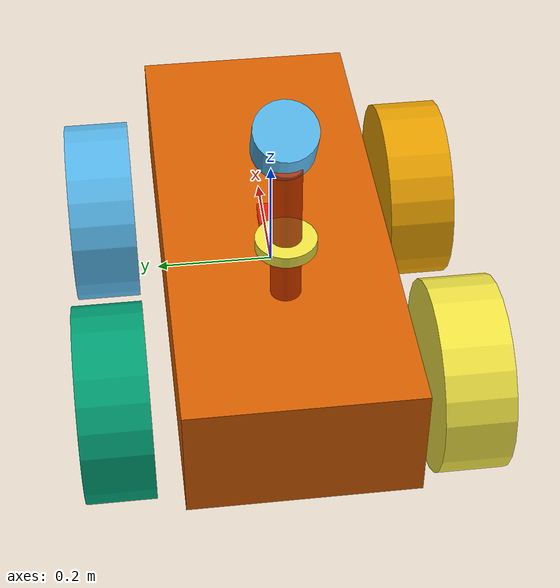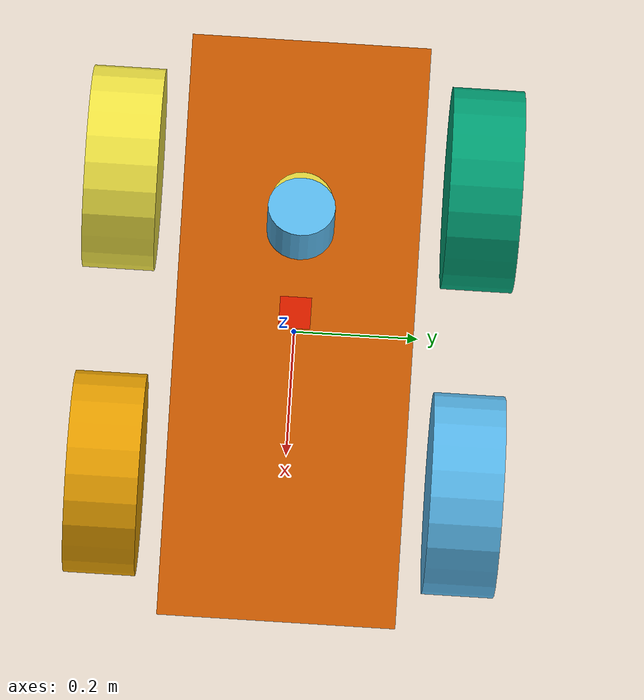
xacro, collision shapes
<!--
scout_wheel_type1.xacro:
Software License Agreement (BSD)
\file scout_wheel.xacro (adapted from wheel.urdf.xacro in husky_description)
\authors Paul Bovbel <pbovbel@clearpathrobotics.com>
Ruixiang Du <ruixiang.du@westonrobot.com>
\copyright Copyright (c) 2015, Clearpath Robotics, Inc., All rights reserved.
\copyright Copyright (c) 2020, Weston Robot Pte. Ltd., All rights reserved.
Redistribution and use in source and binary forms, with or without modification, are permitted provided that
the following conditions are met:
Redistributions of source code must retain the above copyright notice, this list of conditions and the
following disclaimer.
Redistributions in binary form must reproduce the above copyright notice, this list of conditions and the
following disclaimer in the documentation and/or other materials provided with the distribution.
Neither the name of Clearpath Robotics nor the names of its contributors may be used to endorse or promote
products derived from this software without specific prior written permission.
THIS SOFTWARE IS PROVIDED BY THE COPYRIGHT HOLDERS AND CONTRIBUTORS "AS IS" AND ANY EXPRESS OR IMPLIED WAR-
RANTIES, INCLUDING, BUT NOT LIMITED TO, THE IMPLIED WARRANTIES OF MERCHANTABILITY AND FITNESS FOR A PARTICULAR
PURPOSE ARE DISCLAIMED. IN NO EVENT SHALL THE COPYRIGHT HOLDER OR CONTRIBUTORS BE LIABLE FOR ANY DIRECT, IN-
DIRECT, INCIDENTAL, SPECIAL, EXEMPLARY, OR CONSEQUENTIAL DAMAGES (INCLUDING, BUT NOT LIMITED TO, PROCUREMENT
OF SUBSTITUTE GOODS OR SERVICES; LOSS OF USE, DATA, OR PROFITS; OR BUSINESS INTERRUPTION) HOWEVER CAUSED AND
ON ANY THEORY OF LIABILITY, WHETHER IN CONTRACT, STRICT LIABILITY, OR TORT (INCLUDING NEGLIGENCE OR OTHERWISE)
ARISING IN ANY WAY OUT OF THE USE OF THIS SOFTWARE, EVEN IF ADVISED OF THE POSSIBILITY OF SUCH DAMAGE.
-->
<?xml version="1.0"?>

<robot name="scout_v2"  xmlns:xacro="http://ros.org/wiki/xacro">

    <xacro:arg name="robot_namespace" default="/" />

    <!-- 属性封装 -->
    <xacro:property name="M_PI" value="3.14159"/>

    <xacro:property name="base_x_size" value="0.9250000" />
    <xacro:property name="base_y_size" value="0.380000" />
    <xacro:property name="base_z_size" value="0.210000" />

    <xacro:property name="wheelbase" value="0.498" />
    <xacro:property name="track" value="0.58306" />   <!-- track————车轮间距 -->
    <xacro:property name="wheel_vertical_offset" value="-0.0702" />

    <xacro:property name="wheel_length" value="1.1653e-01" />
    <xacro:property name="wheel_radius" value="1.6459e-01" />

    <xacro:arg name="organize_cloud" default="true"/>
    <xacro:property name="organize_cloud" value="$(arg organize_cloud)" />

    <material name="black">
        <color rgba="0.0 0.0 0.0 1.0" />
    </material>

    <!-- 底盘的轮子 -->
    <xacro:include filename="$(find scout_gazebo)/urdf/scout_wheel_type1.xacro" />
    <xacro:include filename="$(find scout_gazebo)/urdf/scout_wheel_type2.xacro" />
    <xacro:include filename="$(find scout_gazebo)/urdf/inertial.xacro" />

    <!-- D435i RGB-D相机相关 -->

    <!-- VLP16 激光雷达 -->
    <xacro:include filename="$(find scout_gazebo)/urdf/laser_support.xacro" />
    <xacro:include filename="$(find velodyne_description)/urdf/VLP-16.urdf.xacro"/>

     <!-- 根据图片位置关系：velodyne相对于电机轴心偏移45.3mm，并倾斜安装 -->
    <xacro:VLP-16 parent="velodyne_rotation_base" name="velodyne" topic="/velodyne_points" organize_cloud="${organize_cloud}" hz="10" samples="440">
          <origin xyz="0.0453 0 ${support_length/2}" rpy="0 -0.524 0" />
    </xacro:VLP-16>

    <link name= "velodyne_rotation_base">
        <visual>
            <origin xyz="0 0 0" rpy="0 0 0" />
            <geometry>
                <cylinder radius="0.05" length="0.02"/>
            </geometry>
        </visual>
        <collision>
            <origin xyz="0 0 0" rpy="0 0 0" />
            <geometry>
                 <cylinder radius="0.05" length="0.02"/>
            </geometry>
        </collision>
        <inertial>
            <mass value="0.1"/>
            <origin xyz="0 0 0" rpy="0 0 0" />
            <inertia ixx="0.01" ixy="0" ixz="0" iyy="0.01" iyz="0" izz="0.01"/>
        </inertial>
    </link>

    <!-- 关节保持原来的Y轴旋转，只让velodyne激光雷达本身倾斜 -->
    <joint name="velodyne_rotation_joint" type="continuous">
        <parent link="support"/>
        <child link="velodyne_rotation_base"/>
        <origin xyz="0 0 0" rpy="0 0 0"/>
        <axis xyz="0 1 0"/>
    </joint>

    <transmission name="velodyne_rotation_transmission">
        <type>transmission_interface/SimpleTransmission</type>
        <joint name="velodyne_rotation_joint">
            <hardwareInterface>EffortJointInterface</hardwareInterface>
        </joint>
        <actuator name="velodyne_motor">
            <hardwareInterface>EffortJointInterface</hardwareInterface>
            <mechanicalReduction>1</mechanicalReduction>
        </actuator>
    </transmission>

    <!-- Gazebo控制器插件 -->
    <gazebo>
      <plugin name="gazebo_ros_control" filename="libgazebo_ros_control.so">
         <robotNamespace>/scout_v2</robotNamespace>
        <controlPeriod>0.01</controlPeriod>
        <robotSimType>gazebo_ros_control/DefaultRobotHWSim</robotSimType>
      </plugin>
    </gazebo>

    <!-- IMU 模块 -->
    <xacro:include filename="$(find scout_gazebo)/urdf/imu.xacro"/>
    <xacro:imu sensor_name="imu" parent_link="base_link">
    <origin rpy="0 0 0" xyz="-0.03 0 ${base_z_size/2}"/>
    </xacro:imu>

    <!-- 机器人导航控制模块 -->
    <xacro:include filename="$(find scout_gazebo)/urdf/move.xacro" />

    <!-- Base link  底盘 -->
    <link name="base_link">
        <visual>
            <origin xyz="0 0 0" rpy="0 0 0" />
            <geometry>
                <mesh filename="package://scout_gazebo/meshes/base_link.dae" />
            </geometry>
        </visual>
        <collision>
            <origin xyz="0 0 0.0008" rpy="0 0 0" />
            <geometry>
                <box size="${base_x_size} ${base_y_size} ${base_z_size}"/>
            </geometry>
        </collision>
    </link>

    <link name="base_footprint"/>
    <joint name="base_footprint_joint" type="fixed">
        <origin xyz="0 0 0" rpy="0 0 0" />
        <parent link="base_link" />
        <child link="base_footprint" />
    </joint>

    <link name="inertial_link">
        <inertial>
            <mass value="40" />
            <origin xyz="0.0 0.0 0.0" />
            <inertia ixx="2.288641" ixy="0" ixz="0" iyy="5.103976" iyz="0" izz="3.431465" />
        </inertial>
    </link>

    <joint name="inertial_joint" type="fixed">
        <origin xyz="0 0 0" rpy="0 0 0" />
        <parent link="base_link" />
        <child link="inertial_link" />
    </joint>

    <!-- 宏  Scout wheel macros -->
    <!-- wheel labeled from 0 to 3, conter-clockwise, starting from front right wheel -->
    <!-- motor 1 and 2 (left side) are mechanically installed in a reversed direction -->
    <xacro:scout_wheel_type1 wheel_prefix="front_right">
        <origin xyz="${wheelbase/2} ${-track/2} ${wheel_vertical_offset}" rpy="3.14 0 0" />
    </xacro:scout_wheel_type1>
    <xacro:scout_wheel_type2 wheel_prefix="front_left">
        <origin xyz="${wheelbase/2} ${track/2} ${wheel_vertical_offset}" rpy="0 0 0" />
    </xacro:scout_wheel_type2>
    <xacro:scout_wheel_type1 wheel_prefix="rear_left">
        <origin xyz="${-wheelbase/2} ${track/2} ${wheel_vertical_offset}" rpy="0 0 0" />
    </xacro:scout_wheel_type1>
    <xacro:scout_wheel_type2 wheel_prefix="rear_right">
        <origin xyz="${-wheelbase/2} ${-track/2} ${wheel_vertical_offset}" rpy="3.14 0 0" />
    </xacro:scout_wheel_type2>
</robot>

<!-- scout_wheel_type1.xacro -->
<robot xmlns:xacro="http://ros.org/wiki/xacro" name="scout_wheel">

    <xacro:macro name="scout_wheel_type1" params="wheel_prefix *joint_pose">
        <link name="${wheel_prefix}_wheel_link">
            <inertial>
                <mass value="3" />
                <origin xyz="0 0 0" />
                <inertia ixx="0.7171" ixy="0" ixz="0" iyy="0.1361" iyz="0" izz="0.7171" />
            </inertial>
            <visual>
                <origin xyz="0 0 0" rpy="0 0 0" />
                <geometry>
                    <mesh filename="package://scout_gazebo/meshes/wheel_type1.dae" />
                </geometry>
            </visual>
            <collision>
                <origin xyz="0 0 0" rpy="${M_PI/2} 0 0" />
                <geometry>
                    <cylinder length="${wheel_length}" radius="${wheel_radius}" />
                </geometry>
                <surface>
                  <friction>
                    <ode>
                      <mu>1.0</mu>
                      <mu2>1.0</mu2>
                    </ode>
                  </friction>
                </surface>
            </collision>
        </link>

        <joint name="${wheel_prefix}_wheel" type="continuous">
            <parent link="base_link"/>
            <child link="${wheel_prefix}_wheel_link"/>
            <xacro:insert_block name="joint_pose"/>
            <axis xyz="0 -1 0" rpy="0 0 0" />
        </joint>
    </xacro:macro>

</robot>

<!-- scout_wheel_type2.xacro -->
<robot xmlns:xacro="http://ros.org/wiki/xacro" name="scout_wheel">

    <xacro:macro name="scout_wheel_type2" params="wheel_prefix *joint_pose">
        <link name="${wheel_prefix}_wheel_link">
            <inertial>
                <mass value="3" />
                <origin xyz="0 0 0" />
                <inertia ixx="0.7171" ixy="0" ixz="0" iyy="0.1361" iyz="0" izz="0.7171" />
            </inertial>
            <visual>
                <origin xyz="0 0 0" rpy="0 0 0" />
                <geometry>
                    <mesh filename="package://scout_gazebo/meshes/wheel_type2.dae" />
                </geometry>
            </visual>
            <collision>
                <origin xyz="0 0 0" rpy="${M_PI/2} 0 0" />
                <geometry>
                    <cylinder length="${wheel_length}" radius="${wheel_radius}" />
                </geometry>
                <surface>
                  <friction>
                    <ode>
                      <mu>1.0</mu>
                      <mu2>1.0</mu2>
                    </ode>
                  </friction>
                </surface>
            </collision>
        </link>

        <joint name="${wheel_prefix}_wheel" type="continuous">
            <parent link="base_link"/>
            <child link="${wheel_prefix}_wheel_link"/>
            <xacro:insert_block name="joint_pose"/>
            <axis xyz="0 -1 0" rpy="0 0 0" />
        </joint>
    </xacro:macro>

</robot>

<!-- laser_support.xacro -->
<robot name="laser_support" xmlns:xacro="http://wiki.ros.org/xacro">
    <!-- 雷达支架 -->
    <xacro:property name="support_length" value="0.30" /> <!-- 支架长度 -->
    <xacro:property name="support_radius" value="0.025" /> <!-- 支架半径 -->
    <xacro:property name="support_x_size" value="-0.2" /> <!-- 支架安装的x坐标 -->
    <xacro:property name="support_y_size" value="0.0" /> <!-- 支架安装的y坐标 -->
    <xacro:property name="support_z_size" value="${base_z_size}" /> <!-- 支架安装的z坐标:0.210000  -->

    <xacro:property name="support_m" value="0.02" /> <!-- 支架质量 -->

    <link name="support">
        <visual>
            <geometry>
                <cylinder radius="${support_radius}" length="${support_length}" />
            </geometry>
            <origin xyz="0 0 0" rpy="0.0 0.0 0.0" />
            <material name="red">
                <color rgba="0.8 0.2 0.0 0.8" />
            </material>
        </visual>
        <collision>
            <geometry>
                <cylinder radius="${support_radius}" length="${support_length}" />
            </geometry>
            <origin xyz="0 0 0" rpy="0.0 0.0 0.0" />
        </collision>
        <xacro:cylinder_inertial_matrix m="${support_m}" r="${support_radius}" h="${support_length}" />
    </link>

    <joint name="support2base_link" type="fixed">
        <parent link="base_link" />
        <child link="support" />
        <origin xyz="${support_x_size} ${support_y_size} ${support_z_size}" />
    </joint>
    <gazebo reference="support">
        <material>Gazebo/White</material>
    </gazebo>
</robot>

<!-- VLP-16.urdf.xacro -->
<robot xmlns:xacro="http://www.ros.org/wiki/xacro" name="VLP-16">
  <xacro:property name="M_PI" value="3.1415926535897931" />
  <xacro:macro name="VLP-16" params="*origin parent:=base_link name:=velodyne topic:=/velodyne_points organize_cloud:=false hz:=10 lasers:=16 samples:=1875 collision_range:=0.3 min_range:=0.9 max_range:=130.0 noise:=0.0001 min_angle:=-${M_PI} max_angle:=${M_PI} gpu:=false">

    <joint name="${name}_base_mount_joint" type="fixed">
      <xacro:insert_block name="origin" />
      <parent link="${parent}"/>
      <child link="${name}_base_link"/>
    </joint>

    <link name="${name}_base_link">
      <inertial>
        <mass value="0.83"/>
        <origin xyz="0 0 0.03585"/>
        <inertia ixx="${(0.83 * (3.0*0.0516*0.0516 + 0.0717*0.0717)) / 12.0}" ixy="0" ixz="0"
          iyy="${(0.83 * (3.0*0.0516*0.0516 + 0.0717*0.0717)) / 12.0}" iyz="0"
          izz="${0.5 * 0.83 * (0.0516*0.0516)}"/>
      </inertial>
      <visual>
        <geometry>
          <mesh filename="package://velodyne_description/meshes/VLP16_base_1.dae" />
        </geometry>
      </visual>
      <visual>
        <geometry>
          <mesh filename="package://velodyne_description/meshes/VLP16_base_2.dae" />
        </geometry>
      </visual>
      <collision>
        <origin rpy="0 0 0" xyz="0 0 0.03585"/>
        <geometry>
          <cylinder radius="0.0516" length="0.0717"/>
        </geometry>
      </collision>
    </link>

    <joint name="${name}_base_scan_joint" type="fixed" >
      <origin xyz="0 0 0.0377" rpy="0 0 0" />
      <parent link="${name}_base_link" />
      <child link="${name}"/>
    </joint>

    <link name="${name}">
      <inertial>
        <mass value="0.01"/>
        <origin xyz="0 0 0"/>
        <inertia ixx="1e-7" ixy="0" ixz="0" iyy="1e-7" iyz="0" izz="1e-7"/>
      </inertial>
      <visual>
        <origin xyz="0 0 -0.0377" />
        <geometry>
          <mesh filename="package://velodyne_description/meshes/VLP16_scan.dae" />
        </geometry>
      </visual>
    </link>

    <!-- Gazebo requires the velodyne_gazebo_plugins package -->
    <gazebo reference="${name}">
      <xacro:if value="${gpu}">
        <sensor type="gpu_ray" name="${name}-VLP16">
          <pose>0 0 0 0 0 0</pose>
          <visualize>true</visualize>
          <update_rate>${hz}</update_rate>
          <ray>
            <scan>
              <horizontal>
                <samples>${samples}</samples>
                <resolution>1</resolution>
                <min_angle>${min_angle}</min_angle>
                <max_angle>${max_angle}</max_angle>
              </horizontal>
              <vertical>
                <samples>${lasers}</samples>
                <resolution>1</resolution>
                <min_angle>-${15.0*M_PI/180.0}</min_angle>
                <max_angle> ${15.0*M_PI/180.0}</max_angle>
              </vertical>
            </scan>
            <range>
              <min>${collision_range}</min>
              <max>${max_range+1}</max>
              <resolution>0.001</resolution>
            </range>
            <noise>
              <type>gaussian</type>
              <mean>0.00</mean>
              <stddev>0.0001</stddev>
            </noise>
          </ray>
          <plugin name="gazebo_ros_laser_controller" filename="libgazebo_ros_velodyne_gpu_laser.so">
            <topicName>${topic}</topicName>
            <frameName>${name}</frameName>
            <organize_cloud>${organize_cloud}</organize_cloud>
            <min_range>${min_range}</min_range>
            <max_range>${max_range}</max_range>
            <gaussianNoise>${noise}</gaussianNoise>
          </plugin>
        </sensor>
      </xacro:if>
      <xacro:unless value="${gpu}">
        <sensor type="ray" name="${name}-VLP16">
          <pose>0 0 0 0 0 0</pose>
          <visualize>false</visualize>
          <update_rate>${hz}</update_rate>
          <ray>
            <scan>
              <horizontal>
                <samples>${samples}</samples>
                <resolution>1</resolution>
                <min_angle>${min_angle}</min_angle>
                <max_angle>${max_angle}</max_angle>
              </horizontal>
              <vertical>
                <samples>${lasers}</samples>
                <resolution>1</resolution>
                <min_angle>-${15.0*M_PI/180.0}</min_angle>
                <max_angle> ${15.0*M_PI/180.0}</max_angle>
              </vertical>
            </scan>
            <range>
              <min>${collision_range}</min>
              <max>${max_range+1}</max>
              <resolution>0.001</resolution>
            </range>
            <noise>
              <type>gaussian</type>
              <mean>0.0</mean>
              <stddev>0.0001</stddev>
            </noise>
          </ray>
          <plugin name="gazebo_ros_laser_controller" filename="libgazebo_ros_velodyne_laser.so">
            <topicName>${topic}</topicName>
            <frameName>${name}</frameName>
            <organize_cloud>${organize_cloud}</organize_cloud>
            <min_range>${min_range}</min_range>
            <max_range>${max_range}</max_range>
            <gaussianNoise>${noise}</gaussianNoise>
          </plugin>
        </sensor>
      </xacro:unless>
    </gazebo>

  </xacro:macro>
</robot>

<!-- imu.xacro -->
<robot xmlns:xacro="http://wiki.ros.org/xacro">

    <xacro:macro name="imu" params="sensor_name parent_link *origin">

        <xacro:property name="imu_offset_x" value="0" />
        <xacro:property name="imu_offset_y" value="0" />
        <xacro:property name="imu_offset_z" value="0.2" />
        <xacro:property name="imu_size"     value="0.05" />
        <xacro:property name="imu_m" value="0.01" /> <!-- imu质量 -->
        <!-- imu -->
        <joint name="imutobase" type="fixed">
            <xacro:insert_block name="origin" />
            <parent link="${parent_link}"/>
            <child link="imu_base"/>
        </joint>

        <link name="imu_base">
            <visual>
                <origin rpy="0 0 0" xyz="0 0 0" />
                <geometry>
                        <box size="${imu_size} ${imu_size} ${imu_size}"/>
                </geometry>
                <material name= "black" >
                <color rgba="1.0 0.0 0.0 0.6" />
                </material>
            </visual>
            <collision>
                <geometry>
                    <box size="${imu_size} ${imu_size} ${imu_size}" />
                </geometry>
                <origin xyz="0.0 0.0 0" rpy="0.0 0.0 0.0" />
            </collision>
            <xacro:Box_inertial_matrix m = "${imu_m}" l = "${imu_size}" w = "${imu_size}" h = "${imu_size}"/>
        </link>

        <!-- 被引用的link -->
        <gazebo reference="imu_base">
            <material>Gazebo/White</material>
            <gravity>true</gravity>
            <sensor name="imu_sensor" type="imu">
            <always_on>true</always_on>
            <update_rate>100</update_rate>
            <visualize>true</visualize>
            <topic>__default_topic__</topic>
            <plugin filename="libgazebo_ros_imu_sensor.so" name="imu_plugin">
                <topicName>imu/data</topicName>
                <bodyName>imu_base</bodyName>
                <updateRateHZ>100.0</updateRateHZ>
                <gaussianNoise>0.01</gaussianNoise>
                <xyzOffset>0 0 0</xyzOffset>
                <rpyOffset>0 0 0</rpyOffset>
                <frameName>imu_base</frameName>
            </plugin>
            <pose>0 0 0 0 0 0</pose>
        </sensor>
        </gazebo>

    </xacro:macro>
</robot>
